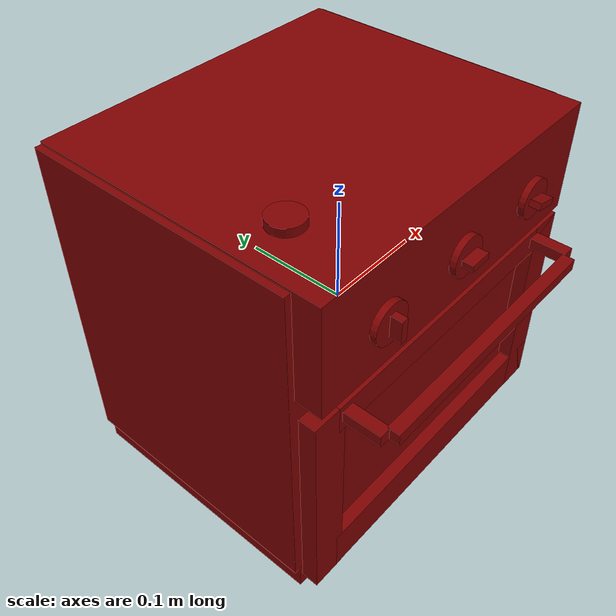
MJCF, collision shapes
<?xml version='1.0' encoding='UTF-8'?>
<mujoco model="model">
  <option timestep="0.002" gravity="0.0 0.0 -9.81"/>
  <compiler angle="radian"/>
  <asset>
    <mesh file="visuals/Body001.obj" name="Body001_vis"/>
    <mesh file="visuals/Container001.obj" name="Container001_vis"/>
    <mesh file="visuals/Door001.obj" name="Door001_vis"/>
    <mesh file="visuals/Door001_Clear.obj" name="Door001_Clear_vis"/>
    <mesh file="visuals/Knob001.obj" name="Knob001_vis"/>
    <mesh file="visuals/Knob002.obj" name="Knob002_vis"/>
    <mesh file="visuals/Knob003.obj" name="Knob003_vis"/>
    <texture file="visuals/T_BC001.png" name="Body001_material" type="2d"/>
    <material name="Body001_material" rgba="1 1 1 1.0" texture="Body001_material" shininess="0.4472135901451111" specular="2"/>
    <texture file="visuals/T_BC001.png" name="Container001_material" type="2d"/>
    <material name="Container001_material" rgba="1 1 1 1.0" texture="Container001_material" shininess="0.4472135901451111" specular="2"/>
    <texture file="visuals/T_BC001.png" name="Door001_material" type="2d"/>
    <material name="Door001_material" rgba="1 1 1 1.0" texture="Door001_material" shininess="0.4472135901451111" specular="1"/>
    <texture file="visuals/T_BC001.png" name="Door001_Clear_material" type="2d"/>
    <material name="Door001_Clear_material" rgba="1 1 1 0.7874016165733337" texture="Door001_Clear_material" shininess="0.4472135901451111" specular="0.3103448502657381"/>
    <texture file="visuals/T_BC001.png" name="Knob001_material" type="2d"/>
    <material name="Knob001_material" rgba="1 1 1 1.0" texture="Knob001_material" shininess="0.4472135901451111" specular="0.3103448502657381"/>
    <texture file="visuals/T_BC001.png" name="Knob002_material" type="2d"/>
    <material name="Knob002_material" rgba="1 1 1 1.0" texture="Knob002_material" shininess="0.4472135901451111" specular="0.3103448502657381"/>
    <texture file="visuals/T_BC001.png" name="Knob003_material" type="2d"/>
    <material name="Knob003_material" rgba="1 1 1 1.0" texture="Knob003_material" shininess="0.4472135901451111" specular="0.3103448502657381"/>
  </asset>
  <default>
    <default class="visual">
      <geom conaffinity="0" contype="0" group="1" type="mesh"/>
    </default>
    <default class="collision">
      <geom group="0" rgba="0.5 0 0 0.5"/>
    </default>
    <default class="spawn">
      <geom group="0" rgba="1 1 1 0.5" contype="0" conaffinity="0"/>
      <site group="0" rgba="1 1 1 0.5"/>
    </default>
    <default class="region">
      <geom group="1" conaffinity="0" contype="0" rgba="0 1 0 0"/>
    </default>
  </default>
  <worldbody>
    <body>
      <body name="object">
        <geom mesh="Body001_vis" type="mesh" solimp="0.998 0.998 0.001" solref="0.001 1" friction="0.95 0.3 0.1" class="visual" material="Body001_material"/>
        <geom class="collision" type="box" pos="-0.15014806389808655 0.03225326165556908 0.007988776080310345" size="0.01095607504248619 0.12452957034111023 0.15582062304019928" quat="1.0 0.0 0.0 0.0" density="1000.0"/>
        <geom class="collision" type="box" pos="0.15029776096343994 0.03225326165556908 0.007988776080310345" size="0.011105741374194622 0.12452957034111023 0.15582062304019928" quat="1.0 0.0 0.0 0.0" density="1000.0"/>
        <geom class="collision" type="box" pos="0.00037354338564909995 0.03225326165556908 -0.14459064602851868" size="0.029636366292834282 0.12452957034111023 0.15582062304019928" quat="0.7071068286895752 -0.0 0.7071067690849304 0.0" density="1000.0"/>
        <geom class="collision" type="box" pos="0.0003735424834303558 0.02025252766907215 0.11629744619131088" size="0.050077278167009354 0.1365303099155426 0.15582062304019928" quat="0.7071068286895752 -0.0 0.7071067690849304 0.0" density="1000.0"/>
        <geom class="collision" type="box" pos="-0.003032587468624115 0.1421884149312973 0.007988776080310345" size="0.01459441240876913 0.1524145007133484 0.15582062304019928" quat="0.7071067094802856 0.0 0.0 0.7071068286895752" density="1000.0"/>
        <geom class="collision" type="cylinder" pos="-0.1104695200920105 -0.04687829315662384 0.16864657402038574" size="0.015137218870222569 0.005071556195616722" quat="1.0 0.0 0.0 0.0" density="1000.0"/>
        <geom class="collision" type="box" pos="0.00037354344385676086 0.03225326165556908 0.08603633940219879" size="0.029581598937511444 0.12452957034111023 0.15582062304019928" quat="0.7071068286895752 -0.0 0.7071067690849304 0.0" density="1000.0"/>
        <geom class="collision" type="box" pos="0.13413213193416595 0.030581790953874588 -0.034753818064928055" size="0.0023184120655059814 0.08300451189279556 0.012300278060138226" quat="0.7071068286895752 -0.0 0.7071067690849304 0.0" density="1000.0"/>
        <geom class="collision" type="box" pos="-0.1335434913635254 0.030581790953874588 -0.034753818064928055" size="0.0023184120655059814 0.08300451189279556 0.012300278060138226" quat="0.7071068286895752 -0.0 0.7071067690849304 0.0" density="1000.0"/>
        <body name="Container001">
          <joint axis="0.0 -1.0 0.0" pos="0.007002250291407108 0.019703805446624756 -0.036553241312503815" limited="true" name="Container001_joint" range="0.0 0.13" type="slide" damping="1" frictionloss="1" armature=".01" stiffness="0.05"/>
          <geom mesh="Container001_vis" type="mesh" solimp="0.998 0.998 0.001" solref="0.001 1" friction="0.95 0.3 0.1" class="visual" material="Container001_material"/>
          <geom class="collision" type="box" pos="0.00039822518010623753 0.019827313721179962 -0.03828849270939827" size="0.10529593378305435 0.09532225131988525 0.002356566721573472" quat="1.0 0.0 0.0 0.0" density="1000.0"/>
          <geom class="collision" type="box" pos="-0.11944076418876648 0.019765039905905724 -0.030751248821616173" size="0.006655312608927488 0.09543942660093307 0.0012939152074977756" quat="1.0 0.0 0.0 0.0" density="1000.0"/>
          <geom class="collision" type="box" pos="-0.10865580290555954 0.01975994184613228 -0.03446810320019722" size="0.00665531400591135 0.09544443339109421 0.0012939026346430182" quat="0.9440328478813171 -2.0632491271044273e-08 0.3298514783382416 7.209132402152818e-09" density="1000.0"/>
          <geom class="collision" type="box" pos="0.10940202325582504 0.01975994184613228 -0.03446810692548752" size="0.00665531400591135 0.09544443339109421 0.0012939036823809147" quat="7.127249546101666e-08 -0.9440328478813171 -2.4903092921135794e-08 -0.3298514783382416" density="1000.0"/>
          <geom class="collision" type="box" pos="0.11957360059022903 0.019765039905905724 -0.030751248821616173" size="0.006655312608927488 0.09543942660093307 0.001293914276175201" quat="1.0 0.0 0.0 0.0" density="1000.0"/>
          <geom class="collision" type="box" pos="-0.10581588745117188 0.02135636657476425 -0.03038015402853489" size="0.00806617084890604 0.07869242876768112 0.001056751236319542" quat="0.834775984287262 4.428877176110291e-08 0.5505897402763367 -1.4125792757724298e-09" density="1000.0"/>
          <geom class="collision" type="box" pos="-0.00176620960701257 -0.06675811856985092 -0.03000950999557972" size="0.008066176436841488 0.09491541981697083 0.0010567521676421165" quat="0.560018002986908 -0.43171724677085876 0.43171700835227966 0.5600183010101318" density="1000.0"/>
          <geom class="collision" type="box" pos="0.1065501943230629 0.02135636657476425 -0.03038015402853489" size="0.00806617084890604 0.07869242876768112 0.0010567507706582546" quat="3.057072461842836e-08 0.834775984287262 7.635378551640315e-09 0.5505897402763367" density="1000.0"/>
          <geom class="collision" type="box" pos="-0.00176620960701257 0.1104477047920227 -0.03000950999557972" size="0.008066178299486637 0.09491542726755142 0.0010567522840574384" quat="0.4317190647125244 -0.5600156188011169 -0.5600206851959229 -0.431715190410614" density="1000.0"/>
          <geom class="collision" type="box" pos="-0.10295441746711731 -0.058874256908893585 -0.03038015402853489" size="0.008066173642873764 0.005420687608420849 0.001056752516888082" quat="0.8021135926246643 -0.15250761806964874 0.529046893119812 0.23122413456439972" density="1000.0"/>
          <geom class="collision" type="box" pos="-0.09684649854898453 -0.06447828561067581 -0.0303801279515028" size="0.008066168054938316 0.0054206750355660915 0.0010567408753558993" quat="0.7184903621673584 -0.28031352162361145 0.4738919734954834 0.42499685287475586" density="1000.0"/>
          <geom class="collision" type="box" pos="-0.11111374199390411 0.021576568484306335 -0.024164412170648575" size="0.003295277012512088 0.08215053379535675 0.0008282599737867713" quat="1.0 0.0 0.0 0.0" density="1000.0"/>
          <geom class="collision" type="box" pos="0.00018828315660357475 -0.06956321001052856 -0.024164412170648575" size="0.10313545167446136 0.0020921058021485806 0.0008282687049359083" quat="1.0 0.0 0.0 0.0" density="1000.0"/>
          <geom class="collision" type="box" pos="-0.10904745012521744 -0.061951227486133575 -0.024164412170648575" size="0.003295270958915353 0.003842470468953252 0.000828248739708215" quat="0.9630976915359497 -7.4883722334107e-08 -9.148812374348836e-09 0.26915204524993896" density="1000.0"/>
          <geom class="collision" type="box" pos="-0.10437021404504776 -0.06636030972003937 -0.024164412170648575" size="0.003295283066108823 0.004517356399446726 0.000828248739708215" quat="0.8660538196563721 -1.892820655768901e-08 -1.0926771487618225e-08 0.4999507665634155" density="1000.0"/>
          <geom class="collision" type="box" pos="-0.10437019914388657 0.10918091982603073 -0.024164412170648575" size="0.003295283764600754 0.004517356865108013 0.000828248739708215" quat="4.651262841548487e-08 -0.4999507665634155 -0.8660538196563721 -7.043785643645606e-08" density="1000.0"/>
          <geom class="collision" type="box" pos="-0.10904745012521744 0.10477190464735031 -0.024164412170648575" size="0.003295272123068571 0.0038424718659371138 0.000828248739708215" quat="8.102094284367922e-08 0.26915183663368225 0.9630977511405945 9.411745161003182e-09" density="1000.0"/>
          <geom class="collision" type="box" pos="-0.09684651345014572 0.10729900747537613 -0.030380140990018845" size="0.008066168986260891 0.005420675966888666 0.001056741108186543" quat="0.4738919138908386 -0.42499667406082153 -0.7184905409812927 -0.2803134322166443" density="1000.0"/>
          <geom class="collision" type="box" pos="-0.10295438766479492 0.1016950011253357 -0.03038014844059944" size="0.008066173642873764 0.0054206643253564835 0.0010567526333034039" quat="0.5290468335151672 -0.23122407495975494 -0.8021136522293091 -0.15250758826732635" density="1000.0"/>
          <geom class="collision" type="box" pos="0.0001882869837572798 0.11308570951223373 -0.024164412170648575" size="0.10313545167446136 0.0020921058021485806 0.0008282687049359083" quat="1.0 0.0 0.0 0.0" density="1000.0"/>
          <geom class="collision" type="box" pos="0.10341976583003998 0.1016949787735939 -0.030380140990018845" size="0.008066173642873764 0.0054206643253564835 0.001056752516888082" quat="0.23122406005859375 0.5290468335151672 0.15250755846500397 -0.8021136522293091" density="1000.0"/>
          <geom class="collision" type="box" pos="0.09724130481481552 0.10729903727769852 -0.03038015402853489" size="0.008066167123615742 0.005420675966888666 0.0010567406425252557" quat="0.4249967634677887 0.47389188408851624 0.2803134620189667 -0.718490481376648" density="1000.0"/>
          <geom class="collision" type="box" pos="0.10944225639104843 0.1047719344496727 -0.024164412170648575" size="0.0032952839974313974 0.0038424718659371138 0.000828248739708215" quat="0.2691517472267151 6.893837500854261e-09 1.7478617664323792e-08 -0.9630978107452393" density="1000.0"/>
          <geom class="collision" type="box" pos="0.10476507246494293 0.10918091982603073 -0.024164412170648575" size="0.0032952839974313974 0.0045173573307693005 0.000828248739708215" quat="0.49995073676109314 1.88726119176863e-08 -3.26926254956561e-08 -0.8660538196563721" density="1000.0"/>
          <geom class="collision" type="box" pos="0.10507585853338242 -0.06636028736829758 -0.024164412170648575" size="0.003295283066108823 0.004517356399446726 0.000828248739708215" quat="6.538524388588485e-08 -0.8660538196563721 0.4999507665634155 -3.7745234493513635e-08" density="1000.0"/>
          <geom class="collision" type="box" pos="0.1097530946135521 -0.061951227486133575 -0.024164412170648575" size="0.0032952839974313974 0.0038424718659371138 0.000828248739708215" quat="7.576508664897119e-08 -0.9630977511405945 0.26915186643600464 -9.395116684629556e-09" density="1000.0"/>
          <geom class="collision" type="box" pos="0.0972413495182991 -0.0644783303141594 -0.030380165204405785" size="0.008066167123615742 0.0054206750355660915 0.0010567406425252557" quat="0.28031325340270996 0.7184906601905823 -0.4249964952468872 0.4738919734954834" density="1000.0"/>
          <geom class="collision" type="box" pos="0.1033492237329483 -0.058874234557151794 -0.030380140990018845" size="0.008066173642873764 0.005420664791017771 0.0010567522840574384" quat="0.15250751376152039 0.8021135926246643 -0.23122410476207733 0.5290469527244568" density="1000.0"/>
          <geom class="collision" type="box" pos="0.11166868358850479 0.021576568484306335 -0.024164412170648575" size="0.003295275615528226 0.08215053379535675 0.0008282599737867713" quat="1.0 0.0 0.0 0.0" density="1000.0"/>
        </body>
        <body name="Door001">
          <joint axis="1.0 0.0 0.0" pos="-0.0002447452279739082 -0.09181776642799377 -0.14766952395439148" limited="true" name="Door001_joint" range="0.0 1.5707963267948966" type="hinge" damping="1" frictionloss="1" armature=".01" stiffness="0.2" springref="-3"/>
          <geom mesh="Door001_vis" type="mesh" solimp="0.998 0.998 0.001" solref="0.001 1" friction="0.95 0.3 0.1" class="visual" material="Door001_material"/>
          <geom class="collision" type="box" pos="-0.14410129189491272 -0.10681606829166412 -0.04308674484491348" size="0.015532135032117367 0.007766919210553169 0.09968185424804688" quat="1.0 0.0 0.0 0.0" density="1000.0"/>
          <geom class="collision" type="box" pos="0.14359517395496368 -0.10681606829166412 -0.04308674484491348" size="0.015532135032117367 0.007766919210553169 0.09968185424804688" quat="1.0 0.0 0.0 0.0" density="1000.0"/>
          <geom class="collision" type="box" pos="0.012223323807120323 -0.10681606829166412 0.04404744505882263" size="0.14690399169921875 0.007766919210553169 0.012547672726213932" quat="1.0 0.0 0.0 0.0" density="1000.0"/>
          <geom class="collision" type="box" pos="0.012223323807120323 -0.10681606829166412 -0.12251543253660202" size="0.14690399169921875 0.007766919210553169 0.019562775269150734" quat="1.0 0.0 0.0 0.0" density="1000.0"/>
          <geom class="collision" type="box" pos="-0.002028370974585414 -0.15088653564453125 0.0458734966814518" size="0.12011595070362091 0.005527830217033625 0.005527830217033625" quat="1.0 0.0 0.0 0.0" density="1000.0"/>
          <geom class="collision" type="box" pos="0.12467844784259796 -0.1289527416229248 0.0458734966814518" size="0.018671143800020218 0.005527838133275509 0.005527830217033625" quat="0.7071068286895752 0.0 0.0 0.7071067690849304" density="1000.0"/>
          <geom class="collision" type="box" pos="-0.12602689862251282 -0.1289527416229248 0.0458734966814518" size="0.018671143800020218 0.005527838133275509 0.005527830217033625" quat="0.7071068286895752 0.0 0.0 0.7071067690849304" density="1000.0"/>
          <body name="Door001_Clear">
            <geom mesh="Door001_Clear_vis" type="mesh" solimp="0.998 0.998 0.001" solref="0.001 1" friction="0.95 0.3 0.1" class="visual" material="Door001_Clear_material"/>
            <geom class="collision" type="box" pos="-6.950646638870239e-05 -0.10270194709300995 -0.03836246207356453" size="0.12502355873584747 0.0007287650369107723 0.06635313481092453" quat="1.0 0.0 0.0 0.0" density="1000.0"/>
          </body>
        </body>
        <body name="Knob001">
          <joint axis="0.0 1.0 0.0" pos="-0.09195391088724136 -0.12413480877876282 0.11093045771121979" limited="true" name="Knob001_joint" range="0.0 4.014257279586958" type="hinge" damping="0.05" armature="0.001"/>
          <geom mesh="Knob001_vis" type="mesh" solimp="0.998 0.998 0.001" solref="0.001 1" friction="0.95 0.3 0.1" class="visual" material="Knob001_material"/>
          <geom class="collision" type="cylinder" pos="-0.09187865257263184 -0.1199907511472702 0.11097143590450287" size="0.01761051081120968 0.0027485794853419065" quat="0.7071067094802856 0.7071068286895752 0.0 0.0" density="1000.0"/>
          <geom class="collision" type="box" pos="-0.09196415543556213 -0.12741884589195251 0.1105961799621582" size="0.0030167505610734224 0.005303218029439449 0.00994835700839758" quat="1.0 0.0 0.0 0.0" density="1000.0"/>
        </body>
        <body name="Knob002">
          <joint axis="0.0 1.0 0.0" pos="-0.0007955431356094778 -0.12392156571149826 0.11093005537986755" limited="true" name="Knob002_joint" range="0.0 3.2288591161895095" type="hinge" damping="0.05" armature="0.001"/>
          <geom mesh="Knob002_vis" type="mesh" solimp="0.998 0.998 0.001" solref="0.001 1" friction="0.95 0.3 0.1" class="visual" material="Knob002_material"/>
          <geom class="collision" type="cylinder" pos="-0.0009866959881037474 -0.1199907511472702 0.11097143590450287" size="0.01761051081120968 0.0027485794853419065" quat="0.7071067094802856 0.7071068286895752 0.0 0.0" density="1000.0"/>
          <geom class="collision" type="box" pos="-0.000777900218963623 -0.12741884589195251 0.11086548119783401" size="0.0030167505610734224 0.005303218029439449 0.00994835700839758" quat="0.7071068286895752 -0.0 0.7071067690849304 0.0" density="1000.0"/>
        </body>
        <body name="Knob003">
          <joint axis="0.0 1.0 0.0" pos="0.09242948144674301 -0.12413480877876282 0.11093045771121979" limited="true" name="Knob003_joint" range="0.0 3.141592653589793" type="hinge" damping="0.05" armature="0.001"/>
          <geom mesh="Knob003_vis" type="mesh" solimp="0.998 0.998 0.001" solref="0.001 1" friction="0.95 0.3 0.1" class="visual" material="Knob003_material"/>
          <geom class="collision" type="cylinder" pos="0.09248964488506317 -0.1199907511472702 0.11097143590450287" size="0.01761051081120968 0.0027485794853419065" quat="0.7071067094802856 0.7071068286895752 0.0 0.0" density="1000.0"/>
          <geom class="collision" type="box" pos="0.0924294963479042 -0.12741884589195251 0.11086548119783401" size="0.0030167505610734224 0.005303218029439449 0.00994835700839758" quat="0.6227676868438721 0.0 0.7824068069458008 0.0" density="1000.0"/>
        </body>
        <geom class="region" name="reg_int" type="box" pos="-0.0001509934663772583 0.021129027009010315 -0.029451973736286163" size="0.139651358127594 0.1126990020275116 0.08607987314462662"/>
        <geom class="region" name="reg_main" type="box" pos="0.0 0.020252518355846405 -1.862645149230957e-08" size="0.16110414266586304 0.1365303248167038 0.1742270141839981"/>
      </body>
    </body>
  </worldbody>
  <actuator>
    <motor name="Container001_joint_actuator" joint="Container001_joint" gear="10"/>
    <motor name="Door001_joint_actuator" joint="Door001_joint" gear="50"/>
    <motor name="Knob001_joint_actuator" joint="Knob001_joint" gear="50"/>
    <motor name="Knob002_joint_actuator" joint="Knob002_joint" gear="50"/>
    <motor name="Knob003_joint_actuator" joint="Knob003_joint" gear="50"/>
  </actuator>
</mujoco>
